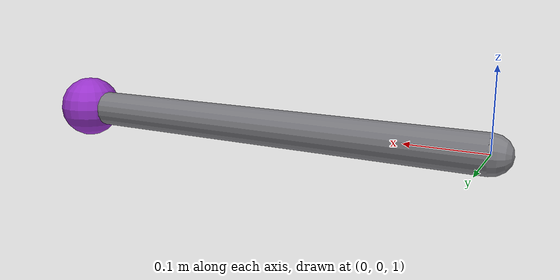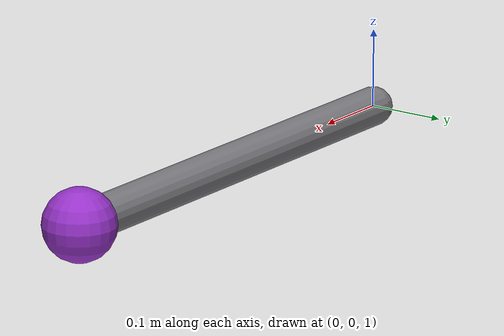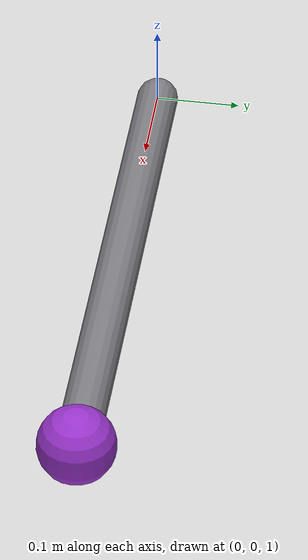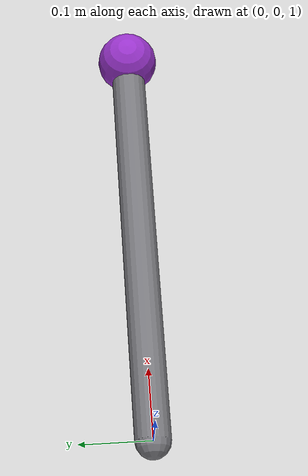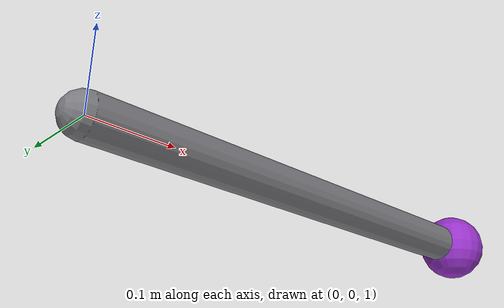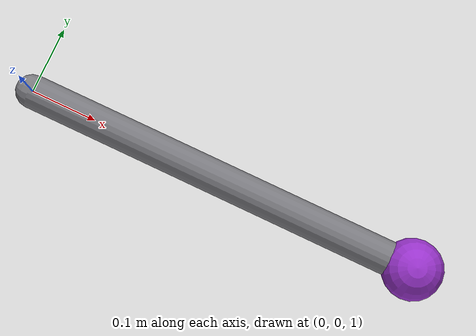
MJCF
<mujoco model="actuator-pos-vel">
    <compiler angle="radian"/>
    <option gravity="0 0 -9.81" timestep="0.001">
        <flag energy="enable"/>
    </option>

    <default>
        <geom contype="0" conaffinity="0"/>
    </default>

    <worldbody>
        <body name="arm" pos="0 0 1">
            <joint name="hinge" type="hinge" axis="0 1 0" damping="0.5"/>
            <geom name="rod" type="capsule" size="0.025"
                  fromto="0 0 0 0.6 0 0" mass="1.0" rgba="0.48 0.48 0.50 1"/>
            <geom name="tip_ball" type="sphere" size="0.045"
                  pos="0.6 0 0" rgba="0.6 0.2 0.8 1" mass="0.001"/>
        </body>
    </worldbody>

    <actuator>
        <position name="motor" joint="hinge" kp="100" gear="2"/>
    </actuator>

    <sensor>
        <actuatorpos name="act_pos" actuator="motor"/>
        <actuatorvel name="act_vel" actuator="motor"/>
        <jointpos name="jnt_pos" joint="hinge"/>
        <jointvel name="jnt_vel" joint="hinge"/>
    </sensor>
</mujoco>
